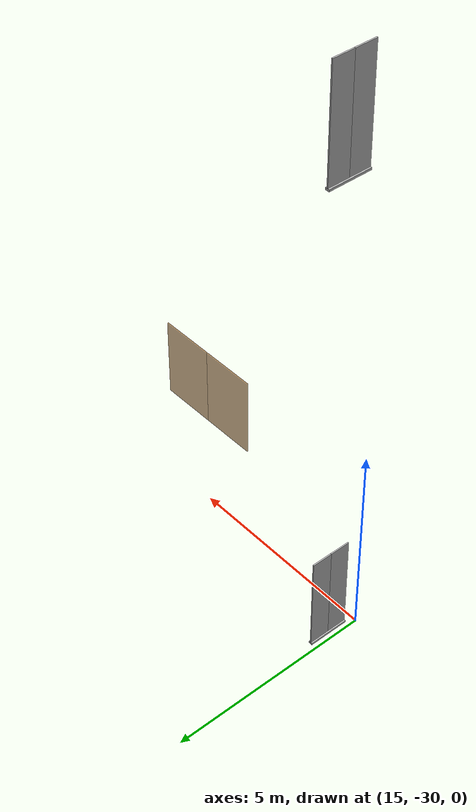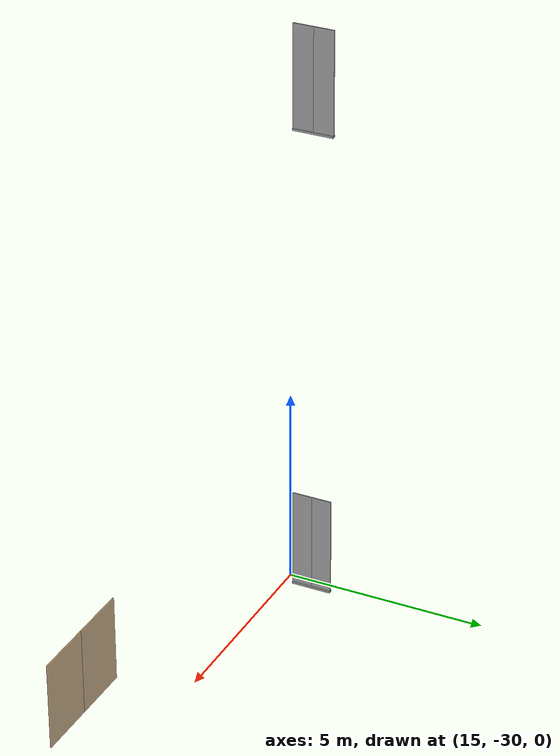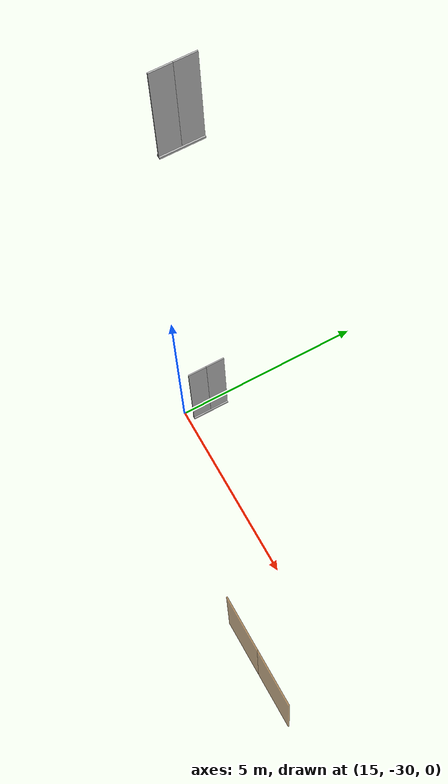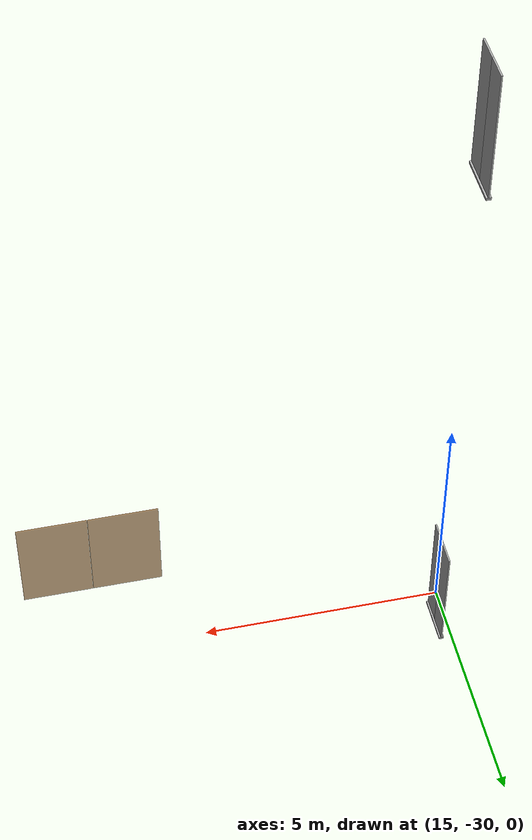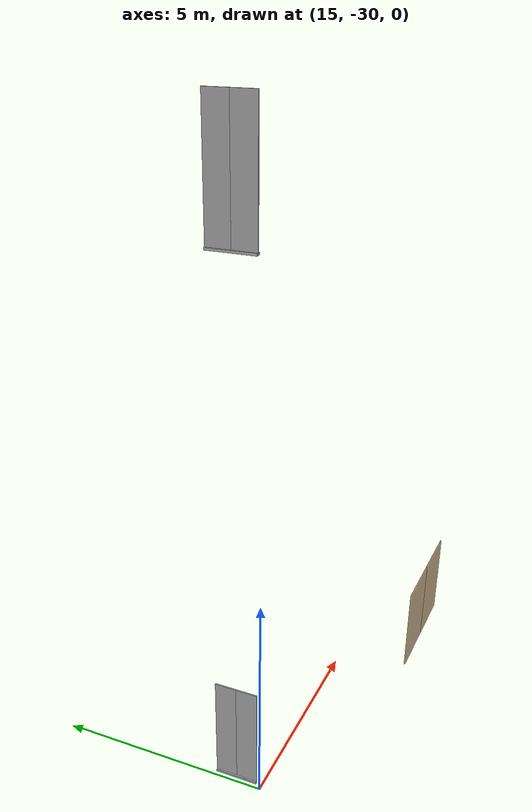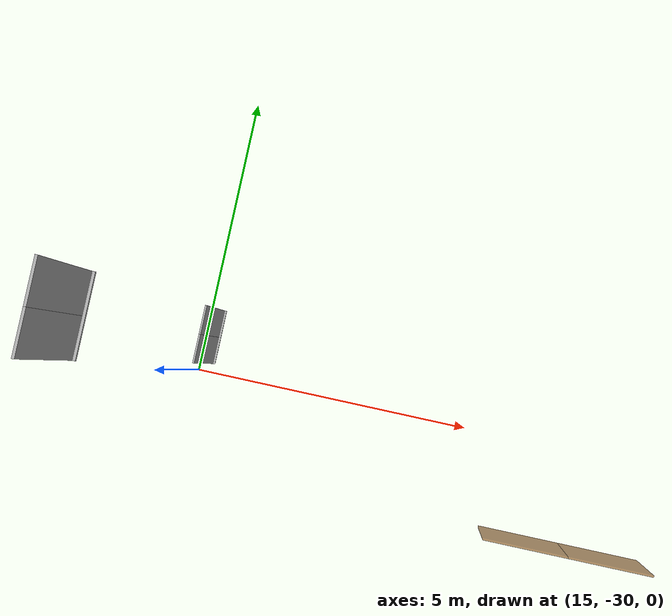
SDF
<sdf version="1.7">
 <world name="sim_world">
  <model name="door5">
   <pose>22.107627551020414 -31.709056122448985 0.0 0 0 3.141592653589793</pose>
   <link name="right">
    <pose>0.7452295918367344 0 1.11 0 0 0</pose>
    <visual name="right_visual">
     <geometry><box><size>1.4804591836734688 0.03 2.2</size></box></geometry>
     <material>
      <ambient>0.5 0.25 0 0.6</ambient>
      <diffuse>0.5 0.25 0 0.6</diffuse>
      <pbr><metal><metalness>0.0</metalness></metal></pbr>
     </material>
    </visual>
    <collision name="right_collision">
     <geometry><box><size>1.4804591836734688 0.03 2.2</size></box></geometry>
     <surface><contact><collide_bitmask>0x02</collide_bitmask></contact></surface>
    </collision>
    <inertial>
     <mass>50.0</mass>
     <inertia><ixx>20.17041666666667</ixx><iyy>29.298997477179647</iyy><izz>9.136080810512976</izz></inertia>
    </inertial>
   </link>
   <joint name="right_joint" type="revolute">
    <parent>world</parent>
    <child>right</child>
    <axis><xyz>0 0 -1</xyz><limit><lower>0</lower><upper>1.57</upper></limit></axis>
    <pose>0.7452295918367344 0 0 0 0 0</pose>
   </joint>
   <link name="left">
    <pose>-0.7452295918367344 0 1.11 0 0 0</pose>
    <visual name="left_visual">
     <geometry><box><size>1.4804591836734688 0.03 2.2</size></box></geometry>
     <material>
      <ambient>0.5 0.25 0 0.6</ambient>
      <diffuse>0.5 0.25 0 0.6</diffuse>
      <pbr><metal><metalness>0.0</metalness></metal></pbr>
     </material>
    </visual>
    <collision name="left_collision">
     <geometry><box><size>1.4804591836734688 0.03 2.2</size></box></geometry>
     <surface><contact><collide_bitmask>0x02</collide_bitmask></contact></surface>
    </collision>
    <inertial>
     <mass>50.0</mass>
     <inertia><ixx>20.17041666666667</ixx><iyy>29.298997477179647</iyy><izz>9.136080810512976</izz></inertia>
    </inertial>
   </link>
   <joint name="left_joint" type="revolute">
    <parent>world</parent>
    <child>left</child>
    <axis><xyz>0 0 -1</xyz><limit><lower>-1.57</lower><upper>0</upper></limit></axis>
    <pose>-0.7452295918367344 0 0 0 0 0</pose>
   </joint>
   <plugin name="register_component" filename="libregister_component.so">
    <component name="Door">
     <v_max_door>0.5</v_max_door>
     <a_max_door>0.3</a_max_door>
     <a_nom_door>0.15</a_nom_door>
     <dx_min_door>0.01</dx_min_door>
     <f_max_door>500.0</f_max_door>
     <ros_interface>true</ros_interface>
     <door name="door5" type="DoubleSwingDoor" left_joint_name="left_joint" right_joint_name="right_joint"/>
    </component>
   </plugin>
  </model>
  <model name="ShaftDoor_lift_L1_name">
   <pose>15.208163265306128 -29.33673469387756 0.0 0 0 1.5707</pose>
   <link name="right_door">
    <pose>0.25 0 1.25 0 0 0</pose>
    <visual name="right_door_visual">
     <geometry><box><size>0.5 0.03 2.5</size></box></geometry>
     <material>
      <ambient>0.5 0.5 0.5 1</ambient>
      <diffuse>0.7 0.7 0.7 1</diffuse>
      <specular>0.6 0.6 0.6 1</specular>
      <emissive>0.1 0.1 0.1 1</emissive>
     </material>
    </visual>
    <collision name="right_door_collision">
     <geometry><box><size>0.5 0.03 2.5</size></box></geometry>
     <surface><contact><collide_bitmask>0x02</collide_bitmask></contact></surface>
    </collision>
   </link>
   <link name="left_door">
    <pose>-0.25 0 1.25 0 0 0</pose>
    <visual name="left_door_visual">
     <geometry><box><size>0.5 0.03 2.5</size></box></geometry>
     <material>
      <ambient>0.5 0.5 0.5 1</ambient>
      <diffuse>0.7 0.7 0.7 1</diffuse>
      <specular>0.6 0.6 0.6 1</specular>
      <emissive>0.1 0.1 0.1 1</emissive>
     </material>
    </visual>
    <collision name="left_door_collision">
     <geometry><box><size>0.5 0.03 2.5</size></box></geometry>
     <surface><contact><collide_bitmask>0x02</collide_bitmask></contact></surface>
    </collision>
   </link>
   <joint name="right_joint" type="prismatic">
    <parent>world</parent>
    <child>right_door</child>
    <axis><xyz>1 0 0</xyz><limit><lower>0</lower><upper>0.5</upper></limit></axis>
   </joint>
   <joint name="left_joint" type="prismatic">
    <parent>world</parent>
    <child>left_door</child>
    <axis><xyz>1 0 0</xyz><limit><lower>-0.5</lower><upper>0</upper></limit></axis>
   </joint>
   <link name="ramp">
    <pose>0 0 -0.025 0 0 0</pose>
    <visual name="ramp_visual">
     <geometry><box><size>1.0 0.1 0.05</size></box></geometry>
     <material>
      <ambient>0.5 0.5 0.5 1</ambient>
      <diffuse>0.7 0.7 0.7 1</diffuse>
      <specular>0.6 0.6 0.6 1</specular>
      <emissive>0.1 0.1 0.1 1</emissive>
     </material>
    </visual>
    <collision name="ramp_collision">
     <geometry><box><size>1.0 0.1 0.05</size></box></geometry>
     <surface><contact><collide_bitmask>0x02</collide_bitmask></contact></surface>
    </collision>
   </link>
   <joint name="ramp_joint" type="fixed"><parent>world</parent><child>ramp</child></joint>
   <plugin name="register_component" filename="libregister_component.so">
    <component name="Door">
     <v_max_door>0.3</v_max_door>
     <a_max_door>0.2</a_max_door>
     <a_nom_door>0.1</a_nom_door>
     <dx_min_door>0.0001</dx_min_door>
     <f_max_door>35.0</f_max_door>
     <door left_joint_name="left_joint" name="ShaftDoor_lift_L1_name" right_joint_name="right_joint" type="DoubleSlidingDoor"/>
    </component>
   </plugin>
  </model>
  <model name="ShaftDoor_lift_L2_name">
   <pose>15.208163265306128 -29.33673469387756 12.0 0 0 1.5707</pose>
   <link name="right_door">
    <pose>0.25 0 1.25 0 0 0</pose>
    <visual name="right_door_visual">
     <geometry><box><size>0.5 0.03 2.5</size></box></geometry>
     <material>
      <ambient>0.5 0.5 0.5 1</ambient>
      <diffuse>0.7 0.7 0.7 1</diffuse>
      <specular>0.6 0.6 0.6 1</specular>
      <emissive>0.1 0.1 0.1 1</emissive>
     </material>
    </visual>
    <collision name="right_door_collision">
     <geometry><box><size>0.5 0.03 2.5</size></box></geometry>
     <surface><contact><collide_bitmask>0x02</collide_bitmask></contact></surface>
    </collision>
   </link>
   <link name="left_door">
    <pose>-0.25 0 1.25 0 0 0</pose>
    <visual name="left_door_visual">
     <geometry><box><size>0.5 0.03 2.5</size></box></geometry>
     <material>
      <ambient>0.5 0.5 0.5 1</ambient>
      <diffuse>0.7 0.7 0.7 1</diffuse>
      <specular>0.6 0.6 0.6 1</specular>
      <emissive>0.1 0.1 0.1 1</emissive>
     </material>
    </visual>
    <collision name="left_door_collision">
     <geometry><box><size>0.5 0.03 2.5</size></box></geometry>
     <surface><contact><collide_bitmask>0x02</collide_bitmask></contact></surface>
    </collision>
   </link>
   <joint name="right_joint" type="prismatic">
    <parent>world</parent>
    <child>right_door</child>
    <axis><xyz>1 0 0</xyz><limit><lower>0</lower><upper>0.5</upper></limit></axis>
   </joint>
   <joint name="left_joint" type="prismatic">
    <parent>world</parent>
    <child>left_door</child>
    <axis><xyz>1 0 0</xyz><limit><lower>-0.5</lower><upper>0</upper></limit></axis>
   </joint>
   <link name="ramp">
    <pose>0 0 -0.025 0 0 0</pose>
    <visual name="ramp_visual">
     <geometry><box><size>1.0 0.1 0.05</size></box></geometry>
     <material>
      <ambient>0.5 0.5 0.5 1</ambient>
      <diffuse>0.7 0.7 0.7 1</diffuse>
      <specular>0.6 0.6 0.6 1</specular>
      <emissive>0.1 0.1 0.1 1</emissive>
     </material>
    </visual>
    <collision name="ramp_collision">
     <geometry><box><size>1.0 0.1 0.05</size></box></geometry>
     <surface><contact><collide_bitmask>0x02</collide_bitmask></contact></surface>
    </collision>
   </link>
   <joint name="ramp_joint" type="fixed"><parent>world</parent><child>ramp</child></joint>
   <plugin name="register_component" filename="libregister_component.so">
    <component name="Door">
     <v_max_door>0.3</v_max_door>
     <a_max_door>0.2</a_max_door>
     <a_nom_door>0.1</a_nom_door>
     <dx_min_door>0.0001</dx_min_door>
     <f_max_door>35.0</f_max_door>
     <door left_joint_name="left_joint" name="ShaftDoor_lift_L2_name" right_joint_name="right_joint" type="DoubleSlidingDoor"/>
    </component>
   </plugin>
  </model>
 </world>
</sdf>
